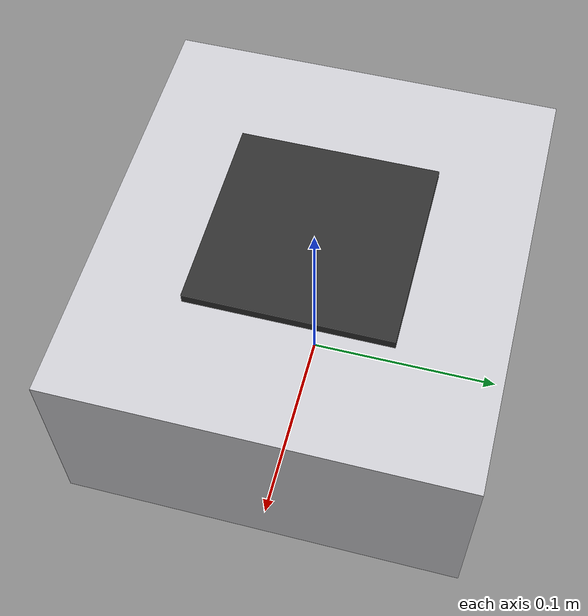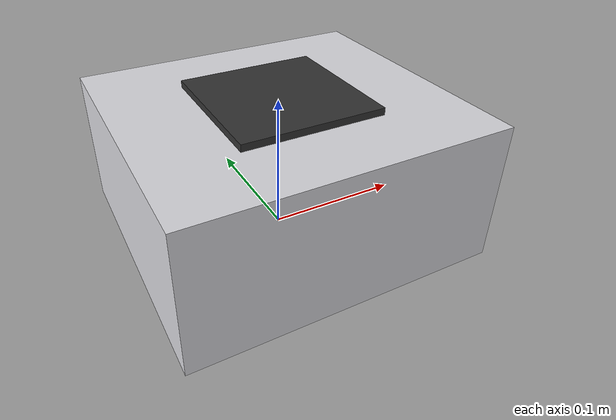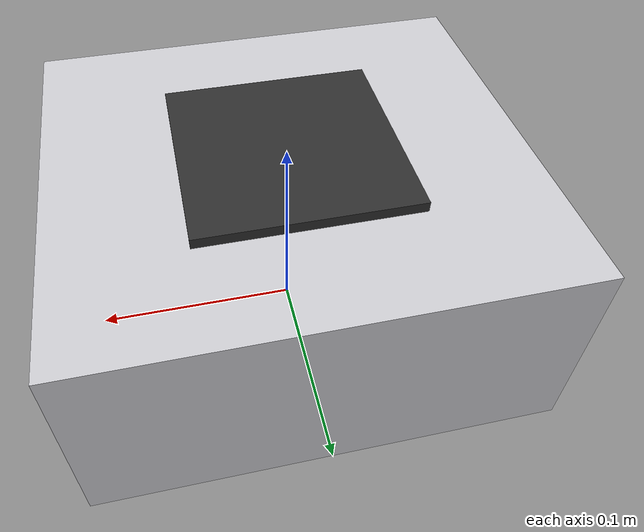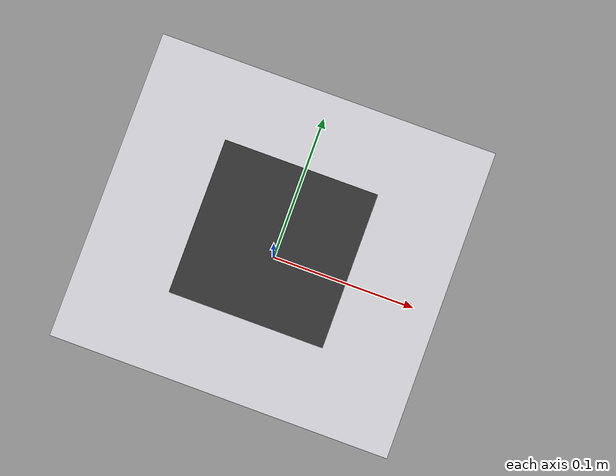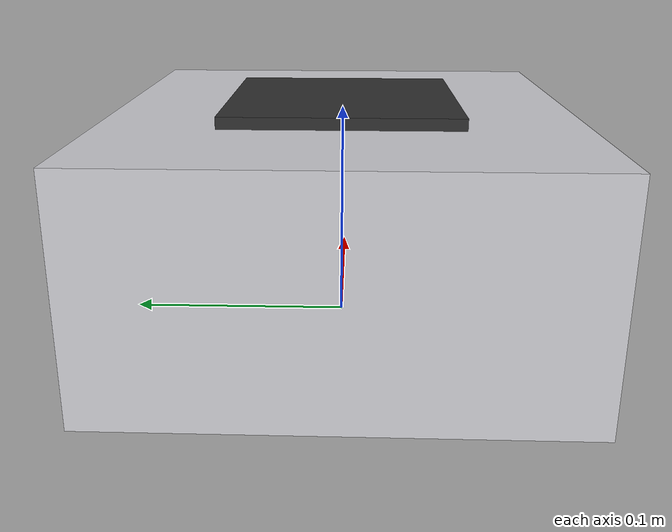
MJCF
<?xml version="1.0" encoding="utf-8"?>
<mujoco model="photolithography_aligner">
  <compiler angle="radian" autolimits="true"/>
  <default>
    <default class="body"><geom contype="1" conaffinity="1"/></default>
  </default>
  <worldbody>
    <body name="base">
      <geom type="box" size="0.11 0.1 0.05" pos="0 0 0.05" rgba="0.85 0.85 0.87 1" class="body"/>
      <geom type="box" size="0.033 0.005000000000000001 0.0125" pos="-0.055 -0.09000000000000001 0.07500000000000001" rgba="0.9 0.7 0.1 1" class="body"/>
      <body name="stage" pos="0 0 0.10">
        <joint name="stage_joint" type="slide" axis="0 0 1" range="0 0.04" damping="1.0" frictionloss="0.3"/>
  <geom type="box" size="0.05 0.05 0.005" pos="0 0 0" rgba="0.2 0.2 0.2 1" class="body"/>
      </body>
    </body>
  </worldbody>
</mujoco>
